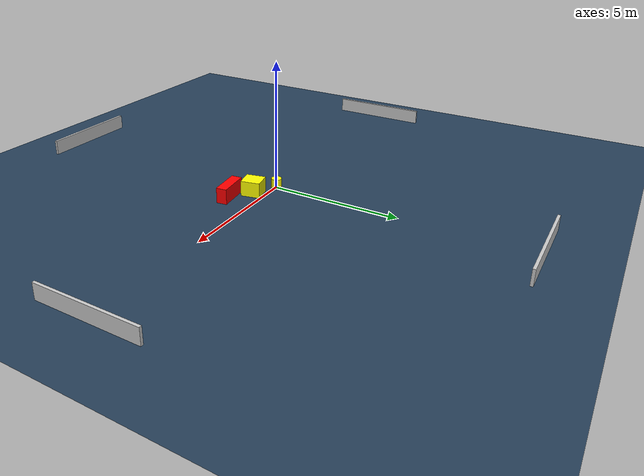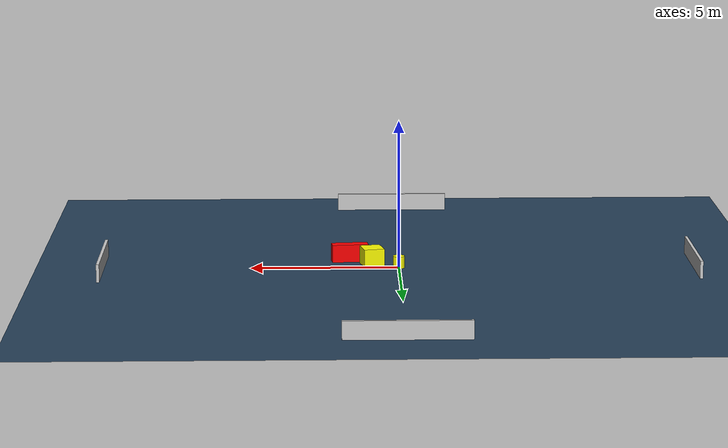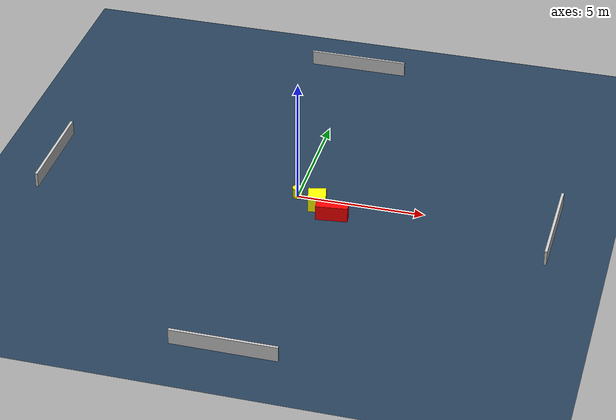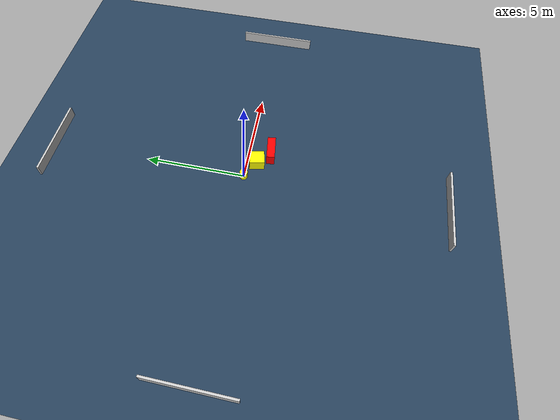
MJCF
<?xml version="1.0" ?>
<mujoco model="generated_environment">
  <option timestep="0.01" integrator="RK4" cone="elliptic"/>
  <default>
    <geom density="1"/>
  </default>
  <asset>
    <texture builtin="gradient" height="3072" name="skybox" rgb1="0.3 0.5 0.7" rgb2="0 0 0" type="skybox" width="512"/>
    <texture builtin="checker" height="300" name="groundplane" rgb1="0.2 0.3 0.4" rgb2="0.1 0.2 0.3" type="2d" width="300"/>
    <material name="groundplane" reflectance="0.2" texrepeat="5 5" texture="groundplane"/>
  </asset>
  <worldbody>
    <light dir="0 0 -1" directional="true" pos="0 0 1.5"/>
    <geom condim="3" friction="0.5 0.005 0.001" material="groundplane" name="floor" pos="0 0 0" size="0 0 0.05" type="plane"/>
    <body name="walls">
      <geom name="wall_1" condim="4" pos="-10.0 0.0 0.3" rgba="0.800000011920929 0.800000011920929 0.800000011920929 1.0" size="0.05 2.0 0.3" type="box"/>
      <geom name="wall_2" condim="4" pos="10.0 0.0 0.3" rgba="0.800000011920929 0.800000011920929 0.800000011920929 1.0" size="0.05 2.0 0.3" type="box"/>
      <geom name="wall_3" condim="4" pos="0.0 -10.0 0.3" rgba="0.800000011920929 0.800000011920929 0.800000011920929 1.0" size="2.0 0.05 0.3" type="box"/>
      <geom name="wall_4" condim="4" pos="0.0 10.0 0.3" rgba="0.800000011920929 0.800000011920929 0.800000011920929 1.0" size="2.0 0.05 0.3" type="box"/>
    </body>
    <body name="robot">
      <joint name="joint_x" type="slide" pos="0 0 0" axis="1 0 0"/>
      <joint name="joint_y" type="slide" pos="0 0 0" axis="0 1 0"/>
      <geom name="robot" type="cylinder" pos="0.0 0.0 0.2" size="0.2 0.2 0.0" mass="5.0" friction="1.0 0.005 0.0001" condim="4" rgba="1.0 1.0 0.0 1.0"/>
    </body>
    <body name="obstacle_1_movable">
      <geom name="obstacle_1_movable" condim="4" pos="0.9010084361834666 -0.4888402273709808 0.3" euler="0 0 101.83518247545926" friction="0.0 0.005 0.001" rgba="1.0 1.0 0.0 1.0" size="0.3758350542893 0.3463337260508078 0.3" type="box" mass="0.1"/>
      <joint type="free"/>
    </body>
    <body name="obstacle_2_static">
      <geom name="obstacle_2_static" condim="4" pos="1.6458311486616821 -1.0825956994199044 0.3" euler="0 0 276.5731565887298" friction="0.0 0.005 0.001" rgba="1.0 0.0 0.0 1.0" size="0.20614292828097977 0.6177981585490077 0.3" type="box"/>
    </body>
  </worldbody>
  <actuator>
    <motor name="actuator_x" joint="joint_x" gear="1" ctrlrange="-1 1"/>
    <motor name="actuator_y" joint="joint_y" gear="1" ctrlrange="-1 1"/>
  </actuator>
</mujoco>
